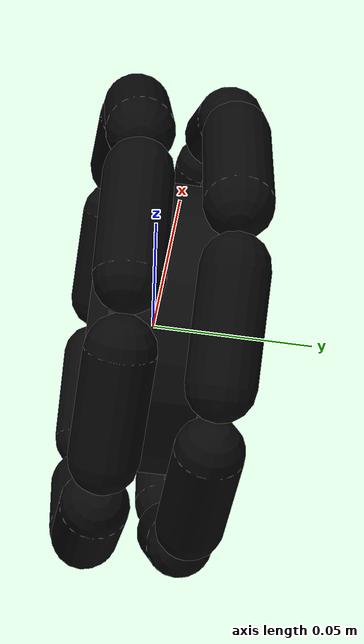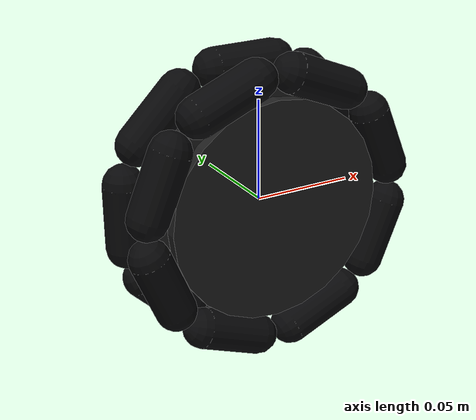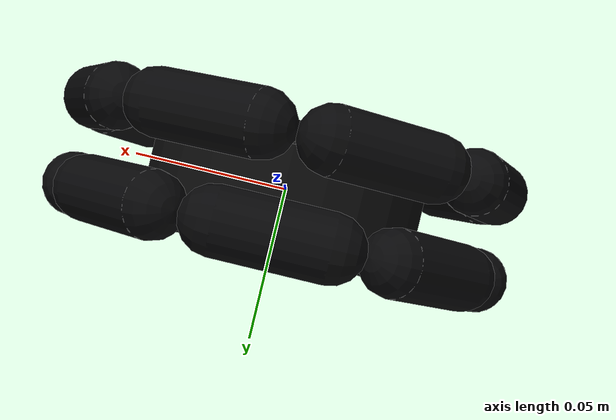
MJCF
<?xml version="1.0"?>
<mujoco model="omni_wheel">
  <compiler angle="degree" autolimits="true"/>

  <default>
    <!-- 主轮关节：电机驱动的轮轴。
         axis="0 1 0" 表示绕局部 Y 轴转。
         damping 是轮轴粘性阻尼；armature 是电机转子和减速箱折算到轮轴的惯量。
         M3508 P19 转子惯量近似：2.5e-6 * 19.2^2 = 0.00092，取 0.001。 -->
    <default class="omni_wheel_joint">
      <joint type="hinge" axis="0 1 0" damping="0.001" armature="0.001"/>
    </default>

    <!-- 中间轮毂：黑色主圆柱，只做惯量和可视化，不参与接触。
         cylinder 的 size="半径 半长"；euler="90 0 0" 把圆柱轴转到局部 Y 轴。
         contype/conaffinity 设为 0，避免轮毂和地面接触，接触只交给外圈滚子。 -->
    <default class="omni_wheel_hub_geom">
      <geom type="cylinder" size="0.045 0.015" mass="0.45" rgba="0.04 0.04 0.04 1" euler="90 0 0" contype="0" conaffinity="0"/>
    </default>

    <!-- 两侧外轮毂盘：左右各一片薄圆盘，只做可视化和少量质量，不参与接触。
         size="外盘半径 外盘半厚度"。 -->
    <default class="omni_wheel_outer_hub_geom">
      <geom type="cylinder" size="0.055 0.003" mass="0.06" rgba="0.12 0.12 0.12 1" euler="90 0 0" contype="0" conaffinity="0"/>
    </default>

    <!-- 被动滚子关节：每个黑色小滚子都能绕自己的切向轴自由转。
         axis 在每个滚子 body 中单独指定，方向为轮缘切线。 -->
    <default class="omni_roller_joint">
      <joint type="hinge" damping="0.0002" armature="0.00002"/>
    </default>

    <!-- 被动滚子几何：capsule 的 size 是胶辊半径。
         fromto 在每个滚子里指定，表示胶辊轴线两端点。
         friction="滑动 扭转 滚动"；这里降低扭转/滚动摩擦，让滚子能释放侧向滑动。 -->
    <default class="omni_roller_geom">
      <geom type="capsule" size="0.010" mass="0.02" friction="1.0 0.005 0.0001" rgba="0.03 0.03 0.035 1"/>
    </default>

    <!-- 轮心标记点：只用于可视化/调试。 -->
    <default class="omni_wheel_center_marker">
      <site type="sphere" size="0.0035" rgba="1.00 0.32 0.18 1"/>
    </default>
  </default>

  <worldbody>
    <!-- 成品轮根 body。
         attach 后会被自动加前缀，例如 front_left_wheel_link/front_left_wheel_joint。
         主轮不直接接触地面，实际接触由下面两排 16 个滚子承担。 -->
    <body name="wheel_link">
      <joint name="wheel_joint" class="omni_wheel_joint"/>
      <geom name="wheel_hub" class="omni_wheel_hub_geom"/>

      <!-- 左右两片外轮毂盘：pos.y = +/-0.015 m。 -->
      <geom name="wheel_outer_hub_l" class="omni_wheel_outer_hub_geom" pos="0 0.015 0"/>
      <geom name="wheel_outer_hub_r" class="omni_wheel_outer_hub_geom" pos="0 -0.015 0"/>

      <body name="roller_l_0" pos="0.064 0.014 0">
        <!-- theta_deg = 0 -->
        <joint name="roller_l_0_joint" class="omni_roller_joint" axis="0 0 1"/>
        <geom name="roller_l_0" class="omni_roller_geom" fromto="0 0 -0.016 0 0 0.016"/>
      </body>
      <body name="roller_l_1" pos="0.045255 0.014 0.045255">
        <!-- theta_deg = 45 -->
        <joint name="roller_l_1_joint" class="omni_roller_joint" axis="-0.707107 0 0.707107"/>
        <geom name="roller_l_1" class="omni_roller_geom" fromto="0.011314 0 -0.011314 -0.011314 0 0.011314"/>
      </body>
      <body name="roller_l_2" pos="0 0.014 0.064">
        <!-- theta_deg = 90 -->
        <joint name="roller_l_2_joint" class="omni_roller_joint" axis="-1 0 0"/>
        <geom name="roller_l_2" class="omni_roller_geom" fromto="0.016 0 0 -0.016 0 0"/>
      </body>
      <body name="roller_l_3" pos="-0.045255 0.014 0.045255">
        <!-- theta_deg = 135 -->
        <joint name="roller_l_3_joint" class="omni_roller_joint" axis="-0.707107 0 -0.707107"/>
        <geom name="roller_l_3" class="omni_roller_geom" fromto="0.011314 0 0.011314 -0.011314 0 -0.011314"/>
      </body>
      <body name="roller_l_4" pos="-0.064 0.014 0">
        <!-- theta_deg = 180 -->
        <joint name="roller_l_4_joint" class="omni_roller_joint" axis="0 0 -1"/>
        <geom name="roller_l_4" class="omni_roller_geom" fromto="0 0 0.016 0 0 -0.016"/>
      </body>
      <body name="roller_l_5" pos="-0.045255 0.014 -0.045255">
        <!-- theta_deg = 225 -->
        <joint name="roller_l_5_joint" class="omni_roller_joint" axis="0.707107 0 -0.707107"/>
        <geom name="roller_l_5" class="omni_roller_geom" fromto="-0.011314 0 0.011314 0.011314 0 -0.011314"/>
      </body>
      <body name="roller_l_6" pos="0 0.014 -0.064">
        <!-- theta_deg = 270 -->
        <joint name="roller_l_6_joint" class="omni_roller_joint" axis="1 0 0"/>
        <geom name="roller_l_6" class="omni_roller_geom" fromto="-0.016 0 0 0.016 0 0"/>
      </body>
      <body name="roller_l_7" pos="0.045255 0.014 -0.045255">
        <!-- theta_deg = 315 -->
        <joint name="roller_l_7_joint" class="omni_roller_joint" axis="0.707107 0 0.707107"/>
        <geom name="roller_l_7" class="omni_roller_geom" fromto="-0.011314 0 -0.011314 0.011314 0 0.011314"/>
      </body>

      <!-- 右排滚子：
           轮缘中心半径 R = 0.064 m，排布在 y = -0.014 m。
           相对左排错开半个节距：theta_deg = 22.5,67.5,...,337.5。
           其余 pos/axis/fromto 规则与左排相同。 -->
      <body name="roller_r_0" pos="0.059128 -0.014 0.024492">
        <!-- theta_deg = 22.5 -->
        <joint name="roller_r_0_joint" class="omni_roller_joint" axis="-0.382683 0 0.92388"/>
        <geom name="roller_r_0" class="omni_roller_geom" fromto="0.006123 0 -0.014782 -0.006123 0 0.014782"/>
      </body>
      <body name="roller_r_1" pos="0.024492 -0.014 0.059128">
        <!-- theta_deg = 67.5 -->
        <joint name="roller_r_1_joint" class="omni_roller_joint" axis="-0.92388 0 0.382683"/>
        <geom name="roller_r_1" class="omni_roller_geom" fromto="0.014782 0 -0.006123 -0.014782 0 0.006123"/>
      </body>
      <body name="roller_r_2" pos="-0.024492 -0.014 0.059128">
        <!-- theta_deg = 112.5 -->
        <joint name="roller_r_2_joint" class="omni_roller_joint" axis="-0.92388 0 -0.382683"/>
        <geom name="roller_r_2" class="omni_roller_geom" fromto="0.014782 0 0.006123 -0.014782 0 -0.006123"/>
      </body>
      <body name="roller_r_3" pos="-0.059128 -0.014 0.024492">
        <!-- theta_deg = 157.5 -->
        <joint name="roller_r_3_joint" class="omni_roller_joint" axis="-0.382683 0 -0.92388"/>
        <geom name="roller_r_3" class="omni_roller_geom" fromto="0.006123 0 0.014782 -0.006123 0 -0.014782"/>
      </body>
      <body name="roller_r_4" pos="-0.059128 -0.014 -0.024492">
        <!-- theta_deg = 202.5 -->
        <joint name="roller_r_4_joint" class="omni_roller_joint" axis="0.382683 0 -0.92388"/>
        <geom name="roller_r_4" class="omni_roller_geom" fromto="-0.006123 0 0.014782 0.006123 0 -0.014782"/>
      </body>
      <body name="roller_r_5" pos="-0.024492 -0.014 -0.059128">
        <!-- theta_deg = 247.5 -->
        <joint name="roller_r_5_joint" class="omni_roller_joint" axis="0.92388 0 -0.382683"/>
        <geom name="roller_r_5" class="omni_roller_geom" fromto="-0.014782 0 0.006123 0.014782 0 -0.006123"/>
      </body>
      <body name="roller_r_6" pos="0.024492 -0.014 -0.059128">
        <!-- theta_deg = 292.5 -->
        <joint name="roller_r_6_joint" class="omni_roller_joint" axis="0.92388 0 0.382683"/>
        <geom name="roller_r_6" class="omni_roller_geom" fromto="-0.014782 0 -0.006123 0.014782 0 0.006123"/>
      </body>
      <body name="roller_r_7" pos="0.059128 -0.014 -0.024492">
        <!-- theta_deg = 337.5 -->
        <joint name="roller_r_7_joint" class="omni_roller_joint" axis="0.382683 0 0.92388"/>
        <geom name="roller_r_7" class="omni_roller_geom" fromto="-0.006123 0 -0.014782 0.006123 0 0.014782"/>
      </body>

      <site name="wheel_center" class="omni_wheel_center_marker"/>
    </body>
  </worldbody>
</mujoco>
